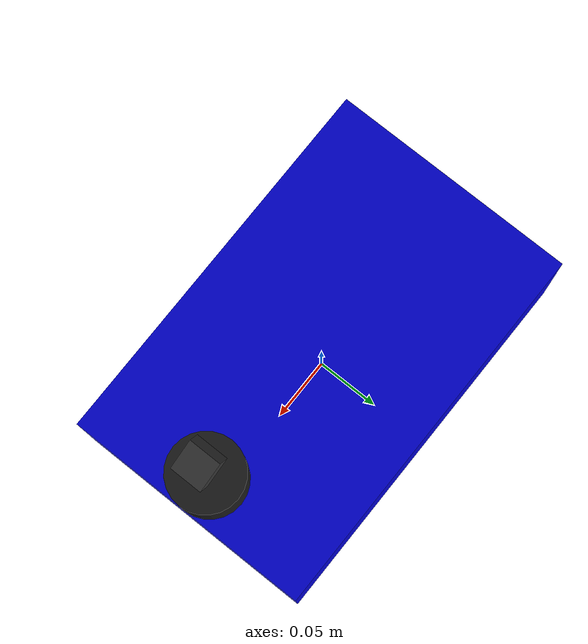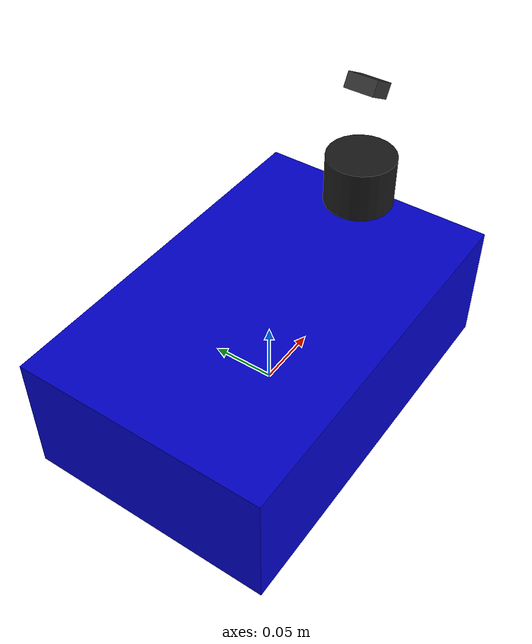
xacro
<?xml version="1.0"?>
<robot name="wro_robot" xmlns:xacro="http://www.ros.org/wiki/xacro">

  <!-- Chassis/Ackermann/wheel/sensor-mount properties, generated from
       platform/shared/config/robot.toml, see robot_properties.gen.xacro. -->
  <xacro:include filename="robot_properties.gen.xacro"/>

  <!-- Derived properties -->
  <xacro:property name="half_wheelbase" value="${wheelbase / 2}"/>
  <xacro:property name="half_track" value="${track_width / 2}"/>

  <!-- Base link (chassis) -->
  <link name="base_link">
    <visual>
      <geometry>
        <box size="${chassis_length} ${chassis_width} ${chassis_height}"/>
      </geometry>
      <material name="blue">
        <color rgba="0 0 0.8 1"/>
      </material>
    </visual>
    <collision>
      <geometry>
        <box size="${chassis_length} ${chassis_width} ${chassis_height}"/>
      </geometry>
    </collision>
    <inertial>
      <mass value="${chassis_mass}"/>
      <origin xyz="0 0 0" rpy="0 0 0"/>
      <inertia
        ixx="${(1.0/12.0) * chassis_mass * (chassis_width*chassis_width + chassis_height*chassis_height)}"
        ixy="0.0" ixz="0.0"
        iyy="${(1.0/12.0) * chassis_mass * (chassis_length*chassis_length + chassis_height*chassis_height)}"
        iyz="0.0"
        izz="${(1.0/12.0) * chassis_mass * (chassis_length*chassis_length + chassis_width*chassis_width)}"/>
    </inertial>
  </link>

  <!-- Footprint link (for navigation) -->
  <link name="base_footprint"/>

  <joint name="base_footprint_joint" type="fixed">
    <parent link="base_footprint"/>
    <child link="base_link"/>
    <origin xyz="0 0 ${wheel_radius}" rpy="0 0 0"/>
  </joint>

  <!-- ====== FRONT WHEELS (Steering) ====== -->

  <!-- Wheel macro for visual/collision/inertial -->
  <xacro:macro name="wheel_link" params="name">
    <link name="${name}">
      <visual>
        <geometry>
          <cylinder radius="${wheel_radius}" length="${wheel_width}"/>
        </geometry>
        <origin xyz="0 0 0" rpy="${pi/2} 0 0"/>
        <material name="dark_rubber">
          <color rgba="0.1 0.1 0.1 1"/>
        </material>
      </visual>
      <collision>
        <geometry>
          <cylinder radius="${wheel_radius}" length="${wheel_width}"/>
        </geometry>
        <origin xyz="0 0 0" rpy="${pi/2} 0 0"/>
      </collision>
      <inertial>
        <mass value="${wheel_mass}"/>
        <origin xyz="0 0 0" rpy="${pi/2} 0 0"/>
        <inertia
          ixx="${(1.0/12.0) * wheel_mass * (3*wheel_radius*wheel_radius + wheel_width*wheel_width)}"
          ixy="0.0" ixz="0.0"
          iyy="${(1.0/12.0) * wheel_mass * (3*wheel_radius*wheel_radius + wheel_width*wheel_width)}"
          iyz="0.0"
          izz="${0.5 * wheel_mass * wheel_radius * wheel_radius}"/>
      </inertial>
    </link>
  </xacro:macro>

  <!-- Steering hinge link (massless) -->
  <xacro:macro name="steering_link" params="name">
    <link name="${name}">
      <inertial>
        <mass value="0.001"/>
        <inertia ixx="0.00001" ixy="0.0" ixz="0.0"
                 iyy="0.00001" iyz="0.0" izz="0.00001"/>
      </inertial>
    </link>
  </xacro:macro>

  <!-- Front-left steering assembly -->
  <xacro:steering_link name="front_left_steering"/>

  <joint name="front_left_steering_joint" type="revolute">
    <parent link="base_link"/>
    <child link="front_left_steering"/>
    <origin xyz="${half_wheelbase} ${half_track} 0" rpy="0 0 0"/>
    <axis xyz="0 0 1"/>
    <limit lower="${-max_steering_angle}" upper="${max_steering_angle}" effort="10" velocity="3.0"/>
  </joint>

  <xacro:wheel_link name="front_left_wheel"/>

  <joint name="front_left_wheel_joint" type="continuous">
    <parent link="front_left_steering"/>
    <child link="front_left_wheel"/>
    <origin xyz="0 0 0" rpy="0 0 0"/>
    <axis xyz="0 1 0"/>
  </joint>

  <!-- Front-right steering assembly -->
  <xacro:steering_link name="front_right_steering"/>

  <joint name="front_right_steering_joint" type="revolute">
    <parent link="base_link"/>
    <child link="front_right_steering"/>
    <origin xyz="${half_wheelbase} ${-half_track} 0" rpy="0 0 0"/>
    <axis xyz="0 0 1"/>
    <limit lower="${-max_steering_angle}" upper="${max_steering_angle}" effort="10" velocity="3.0"/>
  </joint>

  <xacro:wheel_link name="front_right_wheel"/>

  <joint name="front_right_wheel_joint" type="continuous">
    <parent link="front_right_steering"/>
    <child link="front_right_wheel"/>
    <origin xyz="0 0 0" rpy="0 0 0"/>
    <axis xyz="0 1 0"/>
  </joint>

  <!-- ====== REAR WHEELS (Drive + counter-phase steering) ====== -->

  <xacro:macro name="rear_steering_assembly" params="side y_sign">
    <xacro:steering_link name="rear_${side}_steering"/>

    <joint name="rear_${side}_steering_joint" type="revolute">
      <parent link="base_link"/>
      <child link="rear_${side}_steering"/>
      <origin xyz="${-half_wheelbase} ${y_sign * half_track} 0" rpy="0 0 0"/>
      <axis xyz="0 0 1"/>
      <limit lower="${-max_steering_angle}" upper="${max_steering_angle}" effort="10" velocity="3.0"/>
      <mimic joint="front_${side}_steering_joint" multiplier="${-rear_steer_ratio}" offset="0"/>
    </joint>

    <xacro:wheel_link name="rear_${side}_wheel"/>

    <joint name="rear_${side}_wheel_joint" type="continuous">
      <parent link="rear_${side}_steering"/>
      <child link="rear_${side}_wheel"/>
      <origin xyz="0 0 0" rpy="0 0 0"/>
      <axis xyz="0 1 0"/>
    </joint>
  </xacro:macro>

  <xacro:rear_steering_assembly side="left" y_sign="1"/>
  <xacro:rear_steering_assembly side="right" y_sign="-1"/>

  <!-- ====== SENSORS ====== -->

  <!-- Camera (RPi Camera 3 Wide: 102 deg HFOV, 1536x864) -->
  <link name="camera_link">
    <visual>
      <geometry>
        <box size="0.024 0.024 0.012"/>
      </geometry>
      <material name="camera_color">
        <color rgba="0.2 0.2 0.2 1"/>
      </material>
    </visual>
    <collision>
      <geometry>
        <box size="0.024 0.024 0.012"/>
      </geometry>
    </collision>
    <inertial>
      <mass value="0.005"/>
      <inertia ixx="0.00001" ixy="0.0" ixz="0.0"
               iyy="0.00001" iyz="0.0" izz="0.00001"/>
    </inertial>
  </link>

  <joint name="camera_joint" type="fixed">
    <parent link="base_link"/>
    <child link="camera_link"/>
    <origin xyz="${camera_mount_x} 0 ${camera_mount_z}" rpy="0 ${camera_mount_pitch} 0"/>
  </joint>

  <gazebo reference="camera_link">
    <sensor name="camera" type="camera">
      <update_rate>30.0</update_rate>
      <camera>
        <horizontal_fov>1.7802</horizontal_fov>
        <image>
          <width>1536</width>
          <height>864</height>
          <format>RGB8</format>
        </image>
        <clip>
          <near>0.05</near>
          <far>10.0</far>
        </clip>
        <noise>
          <type>gaussian</type>
          <mean>0.0</mean>
          <stddev>0.007</stddev>
        </noise>
      </camera>
      <plugin name="camera_controller" filename="libgazebo_ros_camera.so">
        <ros>
          <namespace>/wro_robot</namespace>
          <remapping>~/image_raw:=/camera/image_raw</remapping>
          <remapping>~/camera_info:=/camera/camera_info</remapping>
        </ros>
        <camera_name>camera</camera_name>
        <frame_name>camera_link</frame_name>
        <hack_baseline>0.0</hack_baseline>
      </plugin>
    </sensor>
  </gazebo>

  <!-- LiDAR (Slamtec C1: 0.05-12m, ~500 samples, 360 deg) -->
  <link name="lidar_link">
    <visual>
      <geometry>
        <cylinder radius="0.0278" length="0.0413"/>
      </geometry>
      <material name="lidar_color">
        <color rgba="0.1 0.1 0.1 1"/>
      </material>
    </visual>
    <collision>
      <geometry>
        <cylinder radius="0.0278" length="0.0413"/>
      </geometry>
    </collision>
    <inertial>
      <mass value="0.110"/>
      <inertia ixx="0.00005" ixy="0.0" ixz="0.0"
               iyy="0.00005" iyz="0.0" izz="0.00004"/>
    </inertial>
  </link>

  <joint name="lidar_joint" type="fixed">
    <parent link="base_link"/>
    <child link="lidar_link"/>
    <origin xyz="${lidar_mount_x} 0 ${chassis_height + lidar_mount_z}" rpy="0 0 0"/>
  </joint>

  <gazebo reference="lidar_link">
    <sensor name="lidar" type="gpu_ray">
      <update_rate>10.0</update_rate>
      <visualize>false</visualize>
      <ray>
        <scan>
          <horizontal>
            <samples>500</samples>
            <resolution>1</resolution>
            <min_angle>-3.14159</min_angle>
            <max_angle>3.14159</max_angle>
          </horizontal>
        </scan>
        <range>
          <min>0.05</min>
          <max>12.0</max>
          <resolution>0.01</resolution>
        </range>
        <noise>
          <type>gaussian</type>
          <mean>0.0</mean>
          <stddev>0.03</stddev>
        </noise>
      </ray>
      <plugin name="lidar_controller" filename="libgazebo_ros_ray_sensor.so">
        <ros>
          <namespace>/wro_robot</namespace>
          <remapping>~/out:=/scan</remapping>
        </ros>
        <output_type>sensor_msgs/LaserScan</output_type>
        <frame_name>lidar_link</frame_name>
      </plugin>
    </sensor>
  </gazebo>

  <!-- IMU (BNO085) -->
  <link name="imu_link">
    <visual>
      <geometry>
        <box size="0.0256 0.0227 0.0046"/>
      </geometry>
      <material name="imu_color">
        <color rgba="0.0 0.4 0.0 1"/>
      </material>
    </visual>
    <inertial>
      <mass value="0.0025"/>
      <inertia ixx="0.00001" ixy="0.0" ixz="0.0"
               iyy="0.00001" iyz="0.0" izz="0.00001"/>
    </inertial>
  </link>

  <joint name="imu_joint" type="fixed">
    <parent link="base_link"/>
    <child link="imu_link"/>
    <origin xyz="0 0 ${imu_mount_z}" rpy="0 0 0"/>
  </joint>

  <gazebo reference="imu_link">
    <sensor name="imu" type="imu">
      <always_on>true</always_on>
      <update_rate>100.0</update_rate>
      <imu>
        <angular_velocity>
          <x><noise type="gaussian"><mean>0.0</mean><stddev>0.054</stddev></noise></x>
          <y><noise type="gaussian"><mean>0.0</mean><stddev>0.054</stddev></noise></y>
          <z><noise type="gaussian"><mean>0.0</mean><stddev>0.054</stddev></noise></z>
        </angular_velocity>
        <linear_acceleration>
          <x><noise type="gaussian"><mean>0.0</mean><stddev>0.3</stddev></noise></x>
          <y><noise type="gaussian"><mean>0.0</mean><stddev>0.3</stddev></noise></y>
          <z><noise type="gaussian"><mean>0.0</mean><stddev>0.3</stddev></noise></z>
        </linear_acceleration>
      </imu>
      <plugin name="imu_plugin" filename="libgazebo_ros_imu_sensor.so">
        <ros>
          <namespace>/wro_robot</namespace>
          <remapping>~/out:=/imu</remapping>
        </ros>
        <initial_orientation_as_reference>false</initial_orientation_as_reference>
      </plugin>
    </sensor>
  </gazebo>

  <!-- ====== ACKERMANN STEERING CONTROLLER ====== -->
  <gazebo>
    <plugin filename="gz-sim-ackermann-steering-system"
            name="gz::sim::systems::AckermannSteering">
      <left_steering_joint>front_left_steering_joint</left_steering_joint>
      <right_steering_joint>front_right_steering_joint</right_steering_joint>
      <left_joint>rear_left_wheel_joint</left_joint>
      <right_joint>rear_right_wheel_joint</right_joint>
      <wheel_base>${wheelbase}</wheel_base>
      <wheel_separation>${track_width}</wheel_separation>
      <wheel_radius>${wheel_radius}</wheel_radius>
      <kingpin_width>${track_width}</kingpin_width>
      <topic>/wro_robot/cmd_vel</topic>
      <odom_topic>/wro_robot/odom</odom_topic>
      <frame_id>odom</frame_id>
      <child_frame_id>base_footprint</child_frame_id>
      <odom_publish_frequency>50.0</odom_publish_frequency>
      <max_steering_angle>${max_steering_angle}</max_steering_angle>
    </plugin>
  </gazebo>

  <!-- ====== GAZEBO MATERIALS ====== -->
  <gazebo reference="base_link">
    <material>Gazebo/Blue</material>
  </gazebo>

  <gazebo reference="front_left_wheel">
    <material>Gazebo/DarkGray</material>
    <mu1>1.0</mu1>
    <mu2>1.0</mu2>
  </gazebo>

  <gazebo reference="front_right_wheel">
    <material>Gazebo/DarkGray</material>
    <mu1>1.0</mu1>
    <mu2>1.0</mu2>
  </gazebo>

  <gazebo reference="rear_left_wheel">
    <material>Gazebo/DarkGray</material>
    <mu1>1.0</mu1>
    <mu2>1.0</mu2>
  </gazebo>

  <gazebo reference="rear_right_wheel">
    <material>Gazebo/DarkGray</material>
    <mu1>1.0</mu1>
    <mu2>1.0</mu2>
  </gazebo>

</robot>

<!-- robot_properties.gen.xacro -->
<robot xmlns:xacro="http://www.ros.org/wiki/xacro">

  <!-- Chassis properties (vTitan) -->
  <xacro:property name="chassis_length" value="0.3"/>
  <xacro:property name="chassis_width" value="0.194"/>
  <xacro:property name="chassis_height" value="0.1"/>
  <xacro:property name="chassis_mass" value="1.3"/>

  <!-- Ackermann geometry -->
  <xacro:property name="wheelbase" value="0.19"/>
  <xacro:property name="track_width" value="0.1675"/>
  <xacro:property name="max_steering_angle" value="0.9599310885968813"/>
  <xacro:property name="rear_steer_ratio" value="1.0"/>

  <!-- Wheel properties -->
  <xacro:property name="wheel_radius" value="0.035"/>
  <xacro:property name="wheel_width" value="0.025"/>
  <xacro:property name="wheel_mass" value="0.05"/>

  <!-- Sensor mount offsets -->
  <xacro:property name="lidar_mount_x" value="0.1222"/>
  <!-- NEGATIVE: the unit is recessed, not stacked on the chassis top. The beam
       MEASURES ~0.08 m off the floor (2026-09-07), so chassis_height + this = 0.08. -->
  <xacro:property name="lidar_mount_z" value="-0.02"/>
  <xacro:property name="lidar_mount_yaw_offset_deg" value="180.0"/>
  <xacro:property name="imu_mount_z" value="0.01"/>
  <xacro:property name="camera_mount_x" value="0.1222"/>
  <xacro:property name="camera_mount_z" value="0.16"/>
  <xacro:property name="camera_mount_pitch" value="0.5236"/>

</robot>
